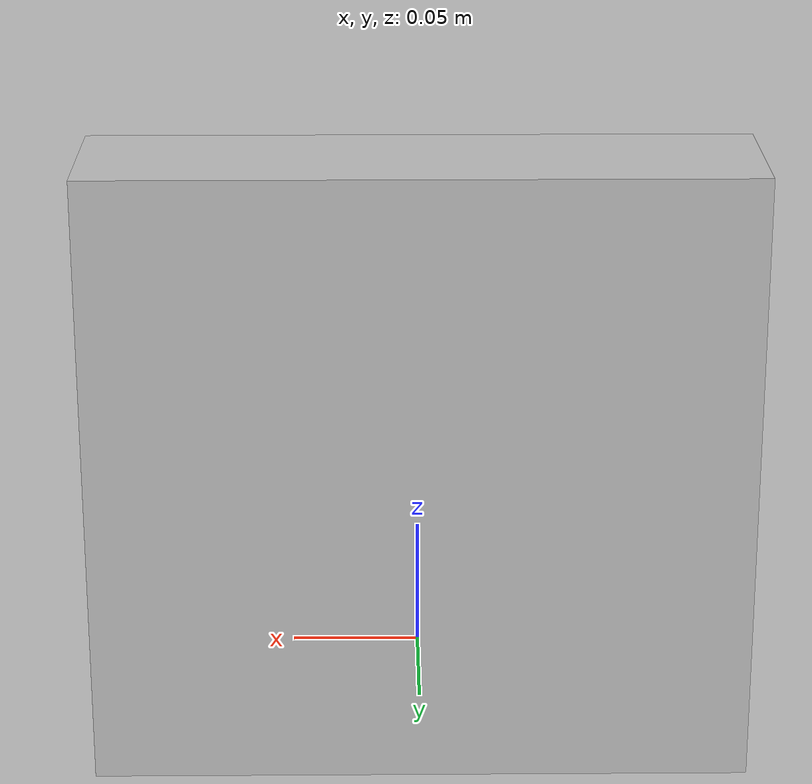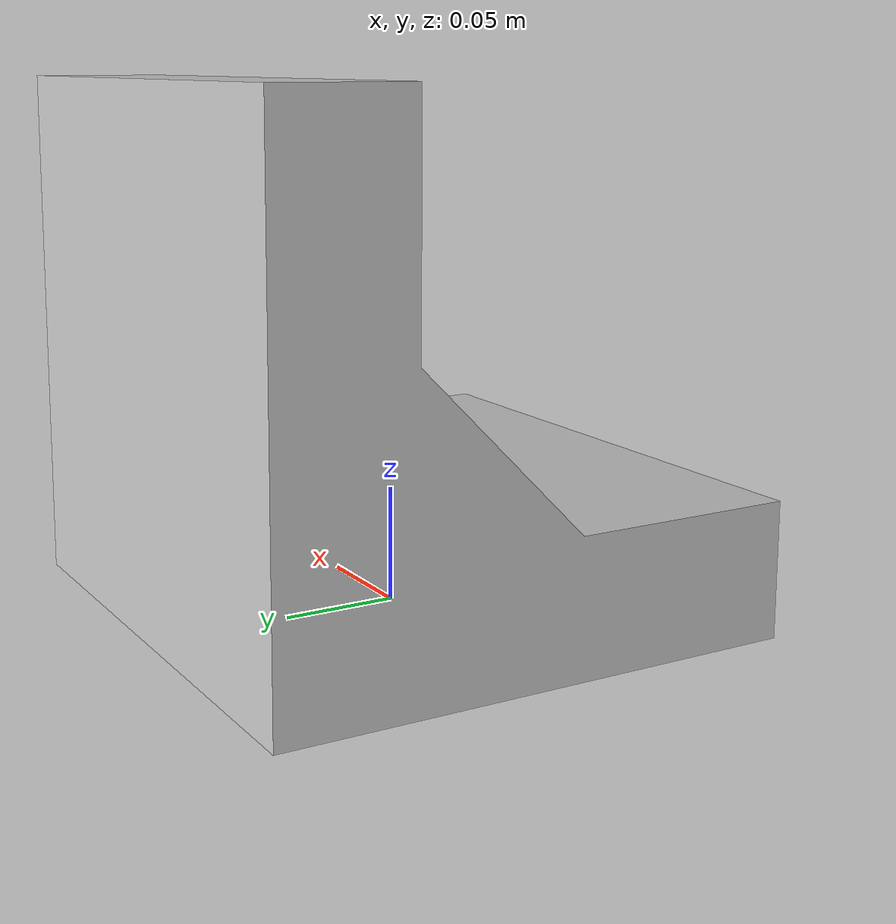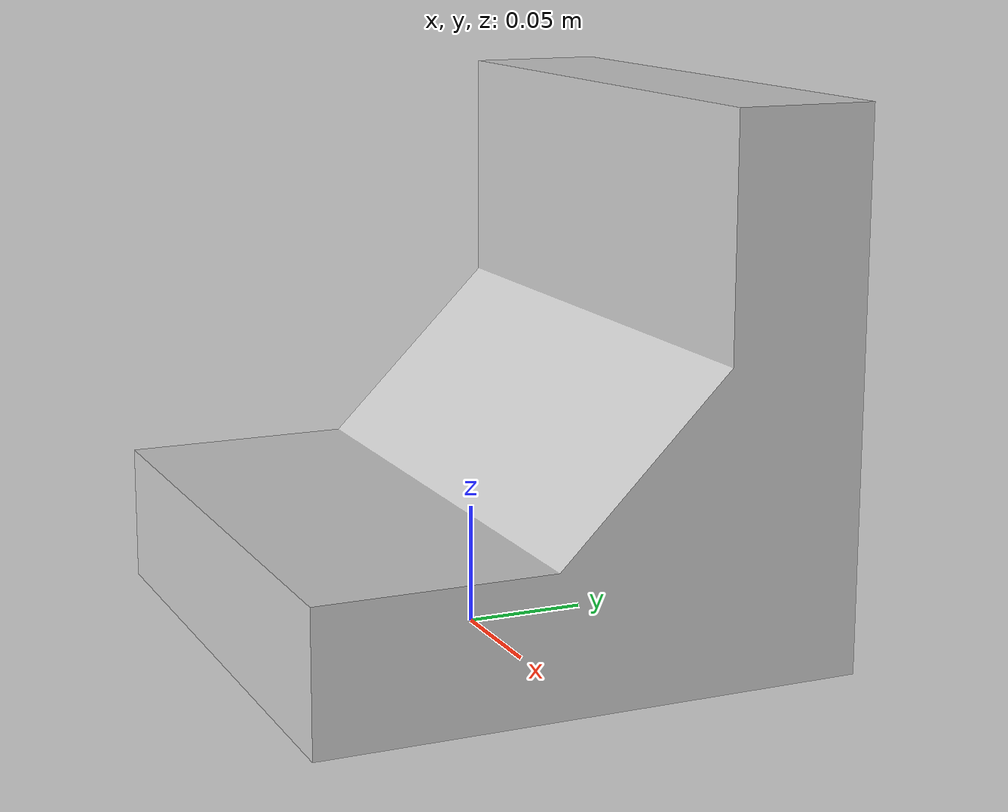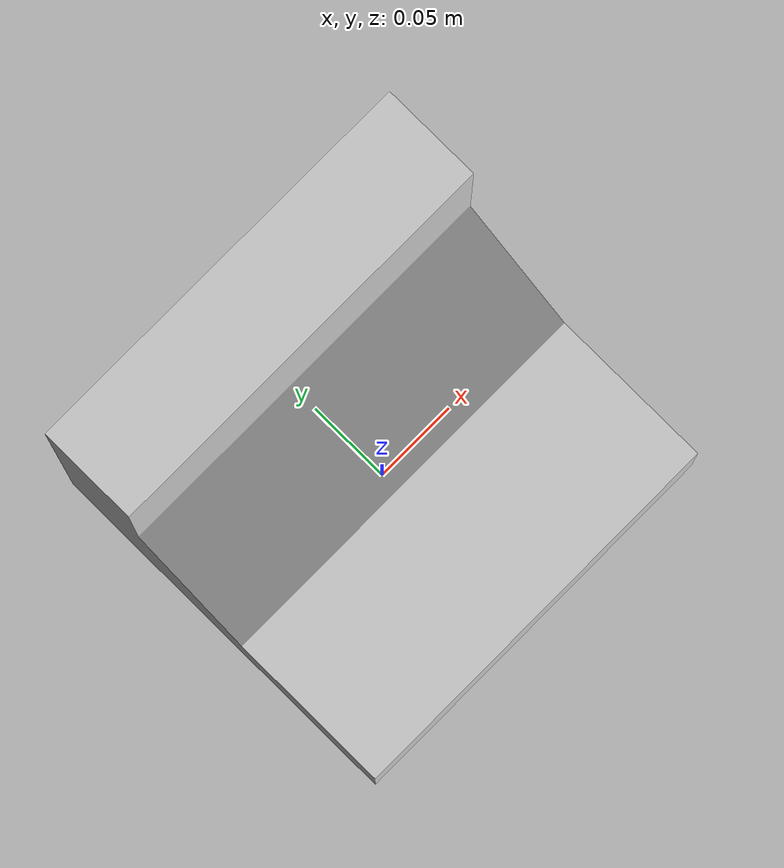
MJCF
<mujoco model="right_angle_mount">
  <default>
    <default class="visual">
      <geom group="2" type="mesh" contype="0" conaffinity="0"/>
    </default>
    <default class="collision">
      <geom group="3" type="mesh"/>
    </default>
  </default>
  <asset>
    <material name="material_right_angle_mount_0" specular="0.20000000000000004" shininess="1.0" rgba="0.80000000 0.80000000 0.80000000 1.0"/>
    <mesh file="right_angle_mount.obj"/>
  </asset>
  <worldbody>
    <body name="right_angle_mount">
      <geom material="material_right_angle_mount_0" mesh="right_angle_mount" class="visual"/>
      <geom mesh="right_angle_mount" class="collision"/>
    </body>
  </worldbody>
</mujoco>
